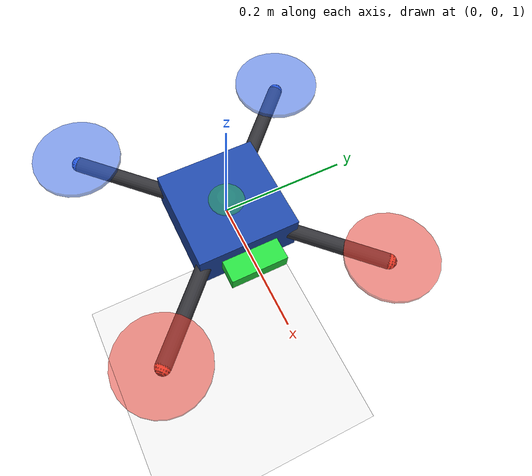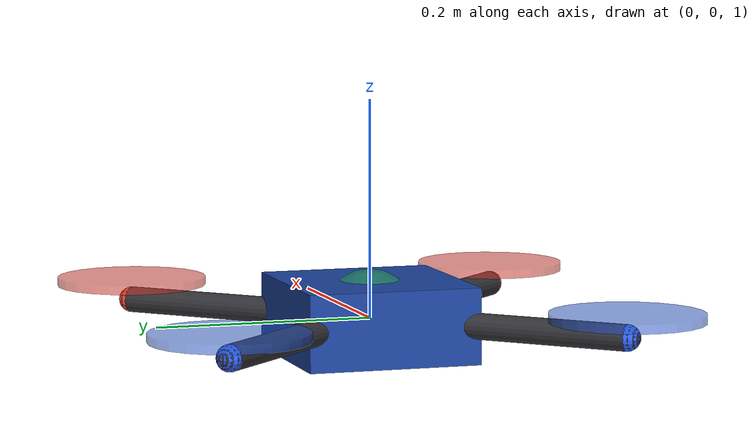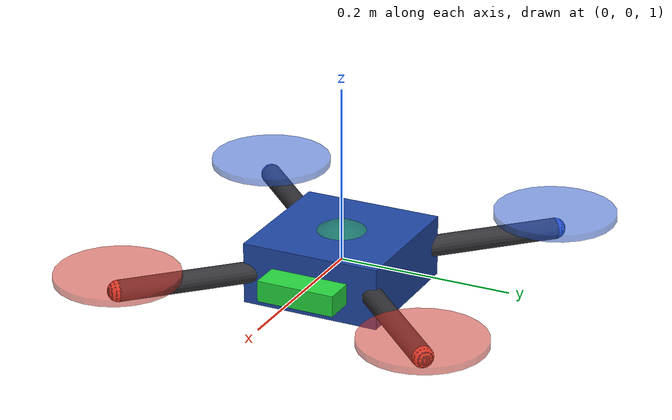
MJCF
<mujoco model="quadrotor_hover">
  <compiler angle="degree"/>
  <option timestep="0.002" integrator="implicitfast" gravity="0 0 -9.81"/>

  <visual>
    <headlight ambient="0.35 0.35 0.35" diffuse="0.75 0.75 0.75"/>
    <global azimuth="135" elevation="-25"/>
  </visual>

  <asset>
    <texture name="ground_texture" type="2d" builtin="checker"
             rgb1="0.85 0.85 0.85" rgb2="0.95 0.95 0.95" width="256" height="256"/>
    <material name="ground_material" texture="ground_texture" texrepeat="8 8"/>
  </asset>

  <worldbody>
    <light name="sun" directional="true" pos="0 0 4" dir="0 0 -1"/>
    <geom name="ground" type="plane" size="3 3 0.1" material="ground_material"/>
    <camera name="tracking_camera" pos="2.2 -2.2 1.8" mode="targetbody" target="quadrotor" fovy="48"/>
    <site name="hover_target" type="sphere" pos="0 0 1" size="0.045"
          rgba="0.15 0.75 0.25 0.45"/>

    <body name="quadrotor" pos="0 0 1">
      <freejoint name="root"/>
      <inertial pos="0 0 0" mass="1.2" diaginertia="0.025 0.025 0.045"/>
      <geom name="body" type="box" size="0.08 0.08 0.035" rgba="0.12 0.28 0.65 1"/>
      <geom name="front_marker" type="box" pos="0.09 0 0" size="0.025 0.045 0.012"
            rgba="0.15 0.85 0.25 1" contype="0" conaffinity="0"/>

      <geom type="capsule" fromto="0 0 0 0.18 0.18 0" size="0.012"
            rgba="0.20 0.20 0.22 1" contype="0" conaffinity="0"/>
      <geom type="capsule" fromto="0 0 0 0.18 -0.18 0" size="0.012"
            rgba="0.20 0.20 0.22 1" contype="0" conaffinity="0"/>
      <geom type="capsule" fromto="0 0 0 -0.18 -0.18 0" size="0.012"
            rgba="0.20 0.20 0.22 1" contype="0" conaffinity="0"/>
      <geom type="capsule" fromto="0 0 0 -0.18 0.18 0" size="0.012"
            rgba="0.20 0.20 0.22 1" contype="0" conaffinity="0"/>

      <geom type="cylinder" pos="0.18 0.18 0.018" size="0.07 0.004"
            rgba="0.85 0.20 0.15 0.55" contype="0" conaffinity="0"/>
      <geom type="cylinder" pos="0.18 -0.18 0.018" size="0.07 0.004"
            rgba="0.85 0.20 0.15 0.55" contype="0" conaffinity="0"/>
      <geom type="cylinder" pos="-0.18 -0.18 0.018" size="0.07 0.004"
            rgba="0.15 0.35 0.85 0.55" contype="0" conaffinity="0"/>
      <geom type="cylinder" pos="-0.18 0.18 0.018" size="0.07 0.004"
            rgba="0.15 0.35 0.85 0.55" contype="0" conaffinity="0"/>

      <site name="rotor_fl" pos="0.18 0.18 0" size="0.012" rgba="1 0.3 0.2 1"/>
      <site name="rotor_fr" pos="0.18 -0.18 0" size="0.012" rgba="1 0.3 0.2 1"/>
      <site name="rotor_rr" pos="-0.18 -0.18 0" size="0.012" rgba="0.2 0.4 1 1"/>
      <site name="rotor_rl" pos="-0.18 0.18 0" size="0.012" rgba="0.2 0.4 1 1"/>
      <site name="imu" pos="0 0 0" size="0.01" rgba="1 1 0 1"/>
    </body>
  </worldbody>

  <actuator>
    <motor name="thrust_fl" site="rotor_fl" gear="0 0 1 0 0 0.02" ctrlrange="0 6"/>
    <motor name="thrust_fr" site="rotor_fr" gear="0 0 1 0 0 -0.02" ctrlrange="0 6"/>
    <motor name="thrust_rr" site="rotor_rr" gear="0 0 1 0 0 0.02" ctrlrange="0 6"/>
    <motor name="thrust_rl" site="rotor_rl" gear="0 0 1 0 0 -0.02" ctrlrange="0 6"/>
  </actuator>

  <sensor>
    <framepos name="position" objtype="xbody" objname="quadrotor"/>
    <framequat name="orientation" objtype="xbody" objname="quadrotor"/>
    <framelinvel name="linear_velocity" objtype="xbody" objname="quadrotor"/>
    <gyro name="angular_velocity" site="imu"/>
    <accelerometer name="specific_force" site="imu"/>
  </sensor>

  <keyframe>
    <key name="hover" qpos="0 0 1 1 0 0 0" ctrl="2.943 2.943 2.943 2.943"/>
  </keyframe>
</mujoco>
